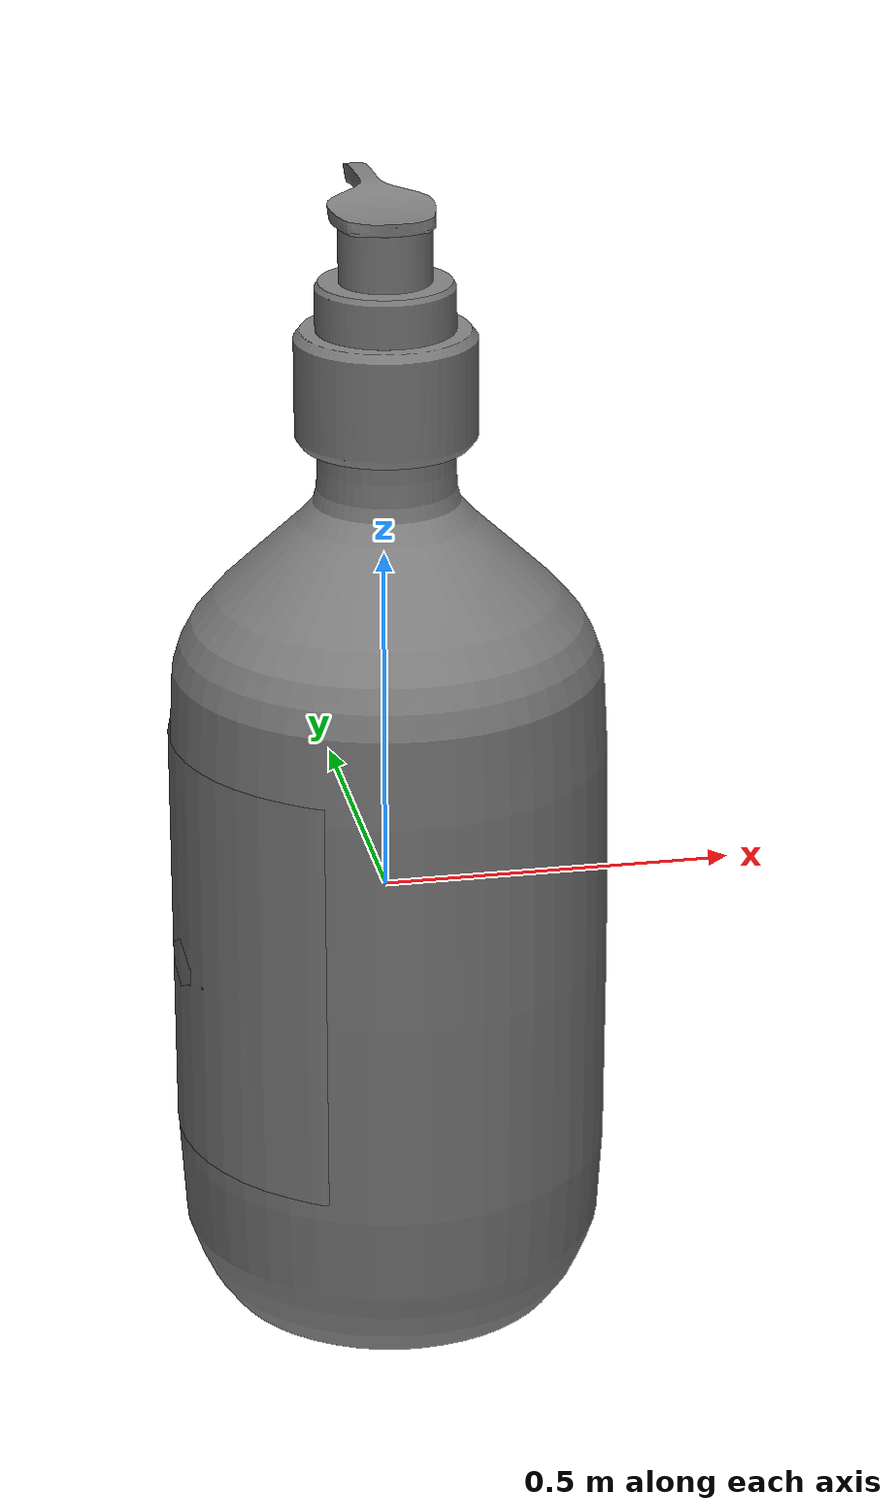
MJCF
<?xml version='1.0' encoding='UTF-8'?>
<mujoco model="partnet_a248bd23-afc1-495d-8576-762a182adb2e-2">
  <compiler angle="radian"/>
  <asset>
    <mesh name="original_4" content_type="model/obj" file="textured_objs/original_4.obj"/>
    <mesh name="original_8" content_type="model/obj" file="textured_objs/original_8.obj"/>
    <mesh name="original_6" content_type="model/obj" file="textured_objs/original_6.obj"/>
    <mesh name="original_3" content_type="model/obj" file="textured_objs/original_3.obj"/>
    <mesh name="original_16" content_type="model/obj" file="textured_objs/original_16.obj"/>
    <mesh name="original_13" content_type="model/obj" file="textured_objs/original_13.obj"/>
    <mesh name="original_15" content_type="model/obj" file="textured_objs/original_15.obj"/>
    <mesh name="original_11" content_type="model/obj" file="textured_objs/original_11.obj"/>
    <mesh name="original_12" content_type="model/obj" file="textured_objs/original_12.obj"/>
    <mesh name="original_7" content_type="model/obj" file="textured_objs/original_7.obj"/>
    <mesh name="original_10" content_type="model/obj" file="textured_objs/original_10.obj"/>
  </asset>
  <worldbody>
    <body name="base">
      <body name="link_2" quat="0.5 0.5 -0.5 -0.5">
        <geom type="mesh" mesh="original_16"/>
        <geom type="mesh" mesh="original_13"/>
        <geom type="mesh" mesh="original_15"/>
        <geom type="mesh" mesh="original_11"/>
        <geom type="mesh" mesh="original_12"/>
        <geom type="mesh" mesh="original_7"/>
        <geom type="mesh" mesh="original_10"/>
        <body name="link_1_helper" pos="-0.0057798 7.59569e-07 -0.00564653">
          <inertial pos="0 0 0" mass="1e-06" diaginertia="1e-10 1e-10 1e-10"/>
          <joint name="joint_4" pos="0 0 0" axis="0.000191599 1 -6.16015e-05" type="slide" range="0 0.16"/>
          <body name="link_1">
            <joint name="joint_1" pos="0 0 0" axis="0.000191599 1 -6.16015e-05"/>
            <geom pos="0.0057798 -7.59569e-07 0.00564653" quat="1 0 0 0" type="mesh" mesh="original_6"/>
            <geom pos="0.0057798 -7.59569e-07 0.00564653" quat="1 0 0 0" type="mesh" mesh="original_3"/>
            <body name="link_0_helper" pos="-6.31106e-05 -7.59569e-07 -0.000132254">
              <inertial pos="0 0 0" mass="1e-06" diaginertia="1e-10 1e-10 1e-10"/>
              <joint name="joint_3" pos="0 0 0" axis="0 -1 0" type="slide" range="0 0.07"/>
              <body name="link_0">
                <joint name="joint_0" pos="0 0 0" axis="0 1 0"/>
                <geom pos="0.00584291 0 0.00577878" quat="1 0 0 0" type="mesh" mesh="original_4"/>
                <geom pos="0.00584291 0 0.00577878" quat="1 0 0 0" type="mesh" mesh="original_8"/>
              </body>
            </body>
          </body>
        </body>
      </body>
    </body>
  </worldbody>
</mujoco>
